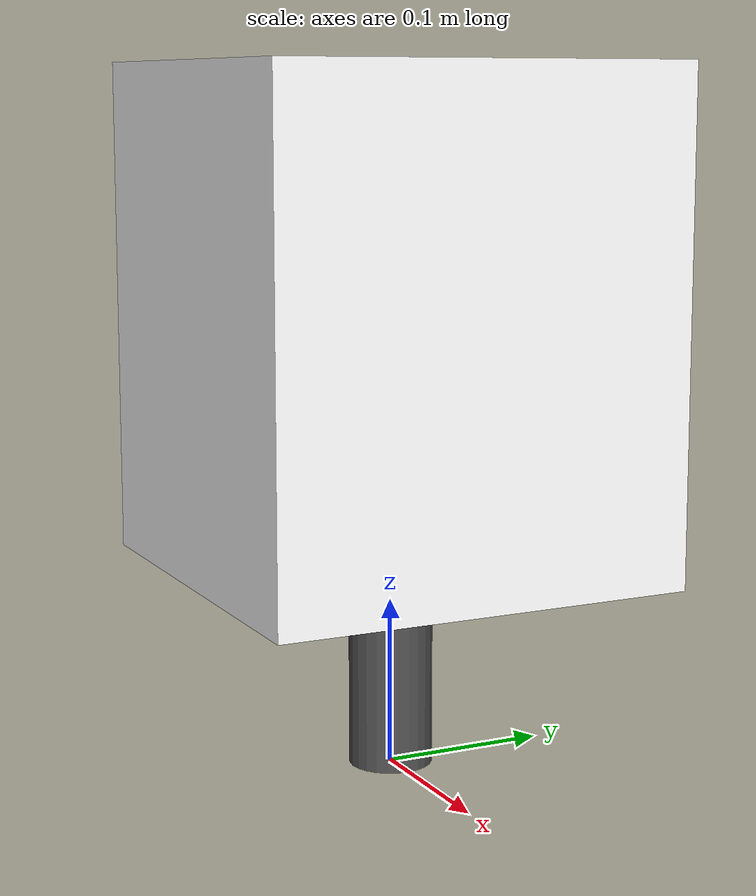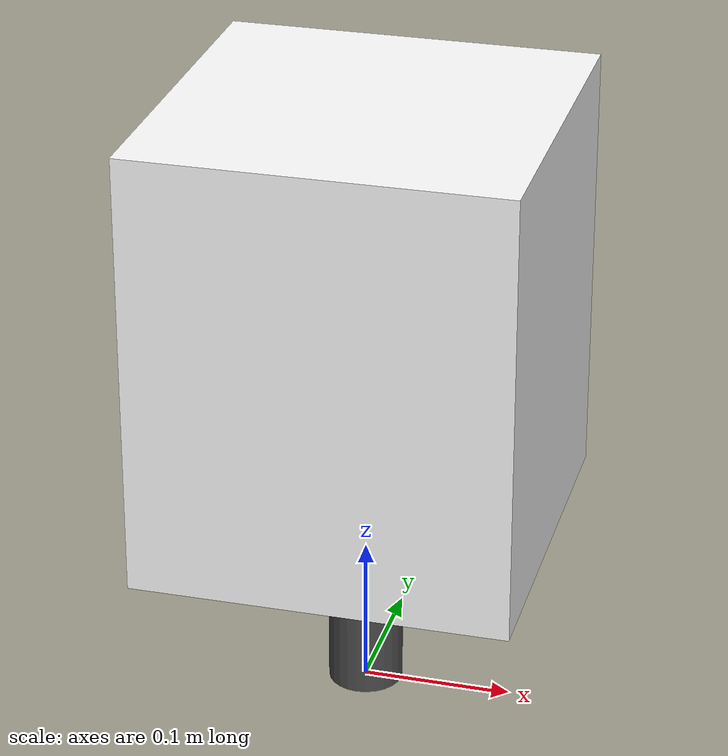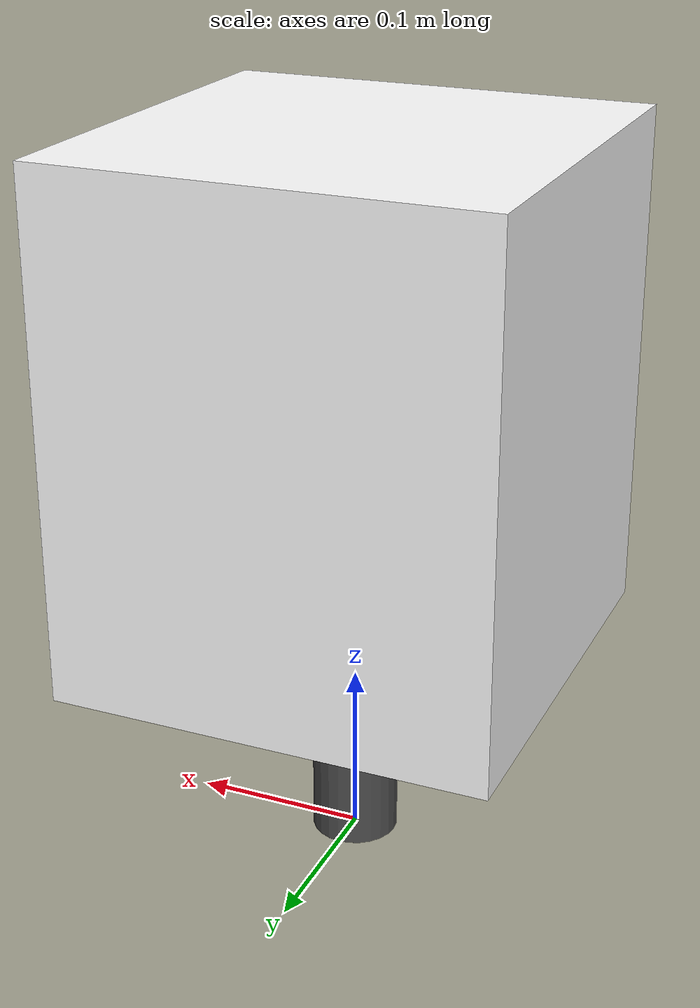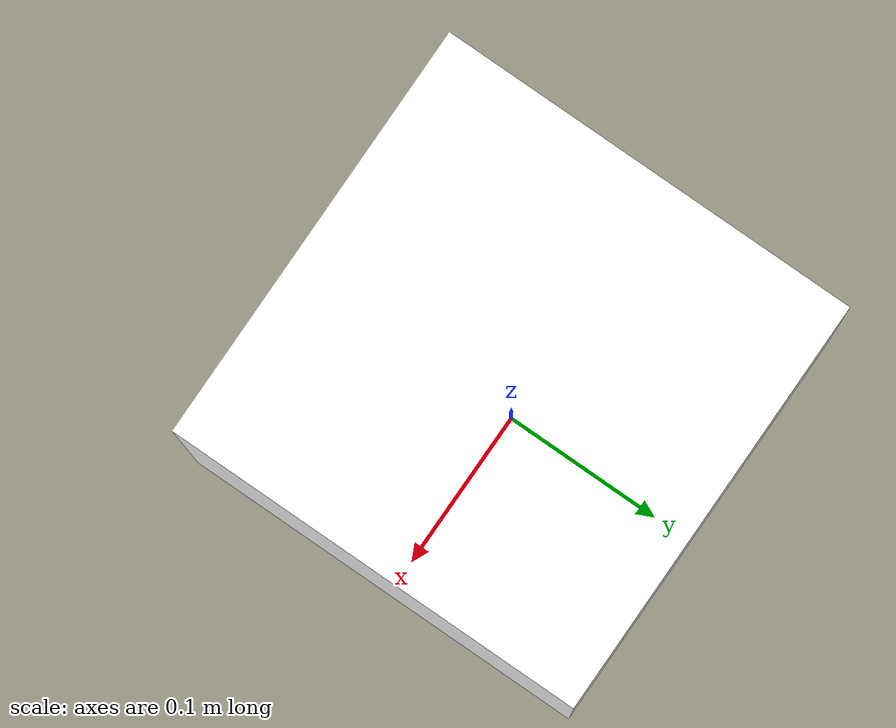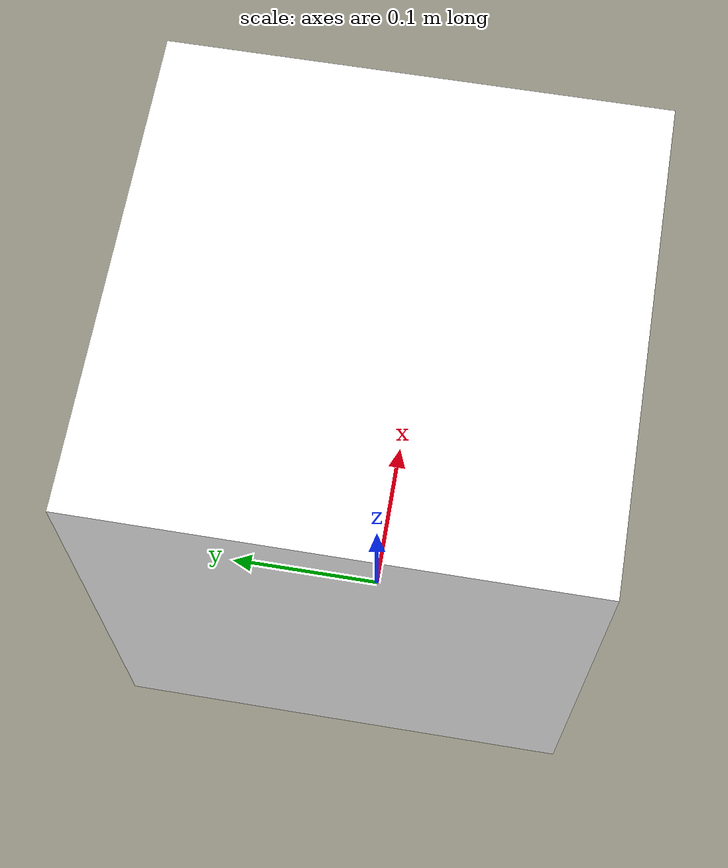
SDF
<sdf version="1.10">
  <model name="aruco_marker_55">
    <static>true</static>
    <link name="link">
      <visual name="post_visual">
        <pose>0 0 0.06 0 0 0</pose>
        <geometry>
          <cylinder>
            <radius>0.025</radius>
            <length>0.12</length>
          </cylinder>
        </geometry>
        <material>
          <ambient>0.3 0.3 0.3 1</ambient>
          <diffuse>0.3 0.3 0.3 1</diffuse>
        </material>
      </visual>
      <collision name="post_collision">
        <pose>0 0 0.06 0 0 0</pose>
        <geometry>
          <cylinder>
            <radius>0.025</radius>
            <length>0.12</length>
          </cylinder>
        </geometry>
      </collision>
      <visual name="sign_visual">
        <pose>0 0 0.26849999999999996 0 0 0</pose>
        <geometry>
          <box>
            <size>0.25 0.25 0.297</size>
          </box>
        </geometry>
        <material>
          <ambient>1 1 1 1</ambient>
          <diffuse>1 1 1 1</diffuse>
          <pbr>
            <metal>
              <albedo_map>materials/textures/sign_55.png</albedo_map>
              <roughness>0.8</roughness>
              <metalness>0.0</metalness>
            </metal>
          </pbr>
        </material>
      </visual>
      <collision name="sign_collision">
        <pose>0 0 0.26849999999999996 0 0 0</pose>
        <geometry>
          <box>
            <size>0.25 0.25 0.297</size>
          </box>
        </geometry>
      </collision>
    </link>
  </model>
</sdf>
